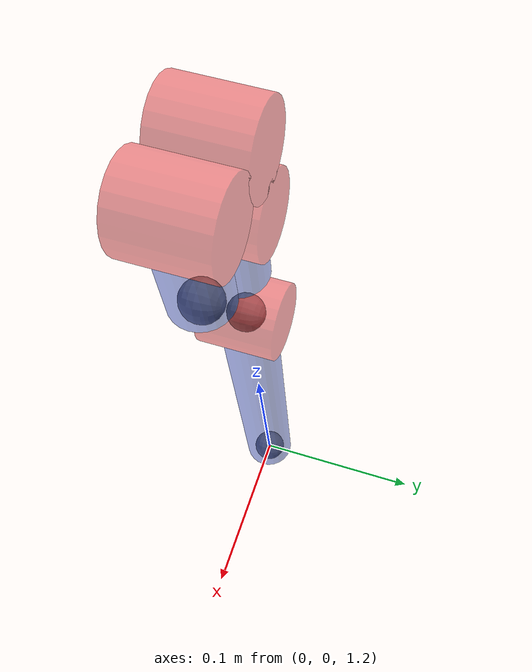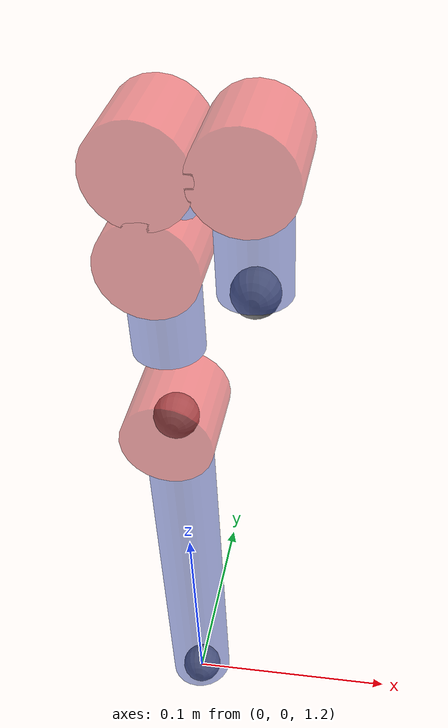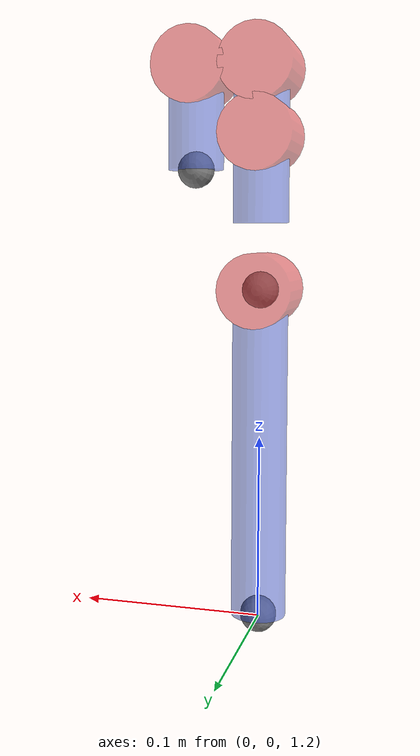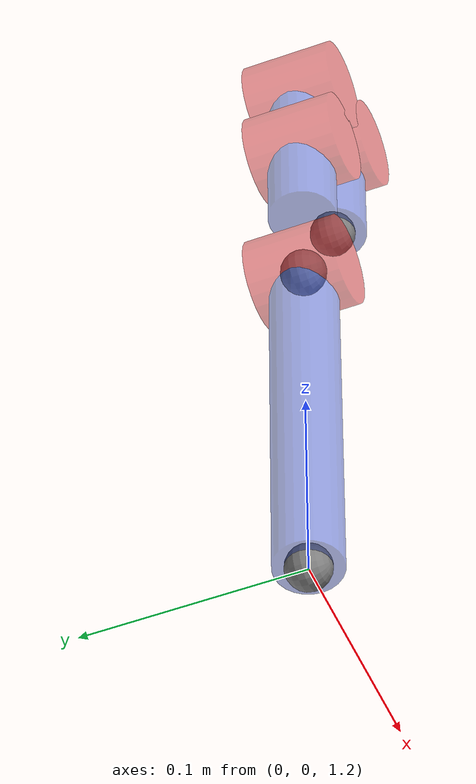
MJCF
<?xml version='1.0' encoding='UTF-8'?>
<mujoco>

    <option timestep="1e-4"/>
    <option gravity="0 0 -9.8"/>

    <asset>
        <texture type="skybox" builtin="gradient" rgb1="1 1 1" rgb2="0.5 0.5 0.5" width="265" height="256"/>
        <texture name="grid" type="2d" builtin="checker" rgb1="0.1 0.1 0.1" rgb2="0.6 0.6 0.6" width="300" height="300"/>
        <material name="grid" texture="grid" texrepeat="10 10" reflectance="0.2"/>
    </asset>

    <worldbody>
        <light pos="0 0 10"/>
        <geom type="plane" size="0.5 0.5 0.1" material="grid"/>
        <camera name="side view" pos="0.1 -1.5 1.0" euler="90 0 0" fovy="60"/>
        <camera name="upper view" pos="0 0 1.5" euler="0 0 0"/>
        <body name="ABC1P" pos="0 0 1.5" euler="90 0 0">
            <joint name="A" type="hinge" axis="0 0 1" stiffness="0" springref="0" damping="0"/>
            <geom name="point A" type="cylinder" pos="0 0 0" size="0.02 0.02" rgba="0.89 0.14 0.16 0.5" euler="0 0 0" contype="0"/>
            <geom name="link AB" type="cylinder" pos="0 -0.01800 0" size="0.015 0.01800" rgba="0.21 0.32 0.82 0.5" euler="90 0 0" contype="0"/>
            <body name="BC1P" pos="0 -0.03600 0" euler="0 0 0">
                <joint name="B" type="hinge" axis="0 0 1" stiffness="0" springref="0" damping="0.1"/>
                <geom name="point B" type="cylinder" pos="0 0 0" size="0.02 0.02" rgba="0.89 0.14 0.16 0.5" euler="0 0 0" contype="0"/>
                <geom name="link BC" type="cylinder" pos="0 -0.02340 0" size="0.015 0.02340" rgba="0.21 0.32 0.82 0.5" euler="90 0 0" contype="0"/>

                <site name="sC1" size="0.01" pos="0 -0.08280 0"/>

                <body name="CP" pos="0 -0.08280 0" euler="0 0 0">

                    <geom name="point C1" type="cylinder" pos="0 0 0" size="0.02 0.02" rgba="0.89 0.14 0.16 0.5" euler="0 0 0" contype="0"/>

                    <geom name="link CP" type="cylinder" pos="0 -0.09000 0" size="0.015 0.09000" rgba="0.21 0.32 0.82 0.5" euler="90 0 0" contype="0"/>

                    <site name="sP" size="0.01" pos="0 -0.18000 0"/>

                </body>

            </body>

        </body>

        <body name="DC2" pos="0.03600 0 1.5" euler="90 0 0">

            <joint name="D" type="hinge" axis="0 0 1" stiffness="0" springref="0" damping="0.1"/>
            <geom name="point D" type="cylinder" pos="0 0 0" size="0.02 0.02" rgba="0.89 0.14 0.16 0.5" euler="0 0 0" contype="0"/>

            <geom name="link DC" type="cylinder" pos="0 -0.02700 0" size="0.015 0.02700" rgba="0.21 0.32 0.82 0.5" euler="90 0 0" contype="0"/>

            <site name="sC2" size="0.01" pos="0 -0.05400 0"/>

        </body>

    </worldbody>

    <equality>
        <connect site1="sC1" site2="sC2"/>
    </equality>

    <actuator>
        <position name="A_act" joint="D"/>
    </actuator>

    <sensor>
        <framepos objtype="site" objname="sP"/>
    </sensor>

</mujoco>
